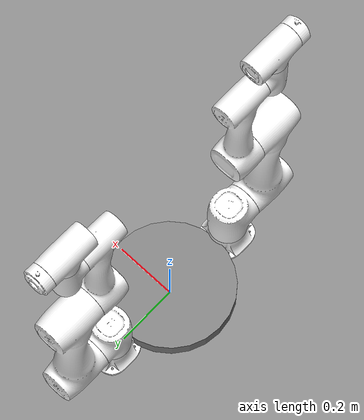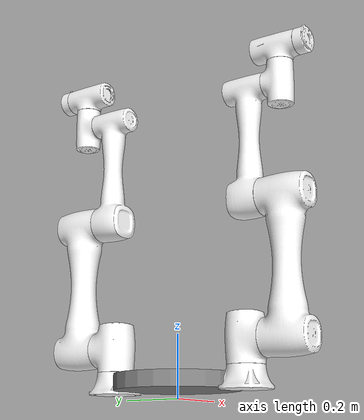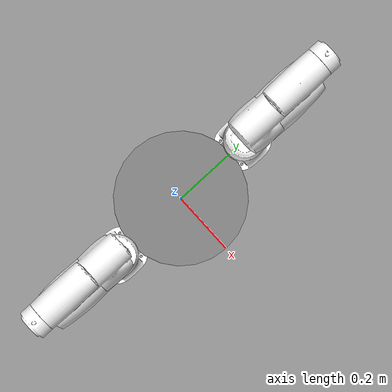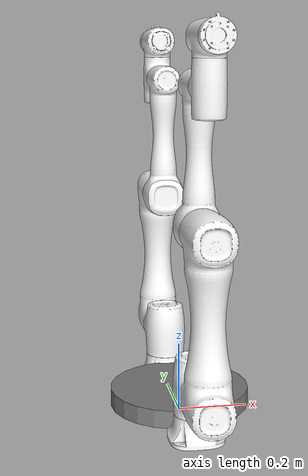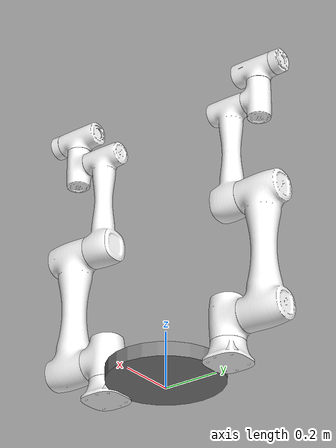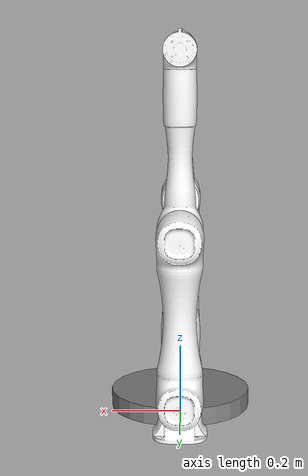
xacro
<?xml version="1.0"?>
<robot xmlns:xacro="http://www.ros.org/wiki/xacro" name="dual_cr5_robot">
    <xacro:arg name="initial_positions_file" default="initial_positions.yaml" />

    <!-- Import dual_cr5_robot urdf file -->
    <xacro:include filename="$(find cr5)/urdf/dual_arm.xacro" />

    <!-- Import control_xacro -->
    <xacro:include filename="dual_cr5_robot.ros2_control.xacro" />

    <xacro:dual_cr5_robot_ros2_control name="FakeSystem" initial_positions_file="$(arg initial_positions_file)"/>

</robot>

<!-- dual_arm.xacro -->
<robot xmlns:xacro="http://www.ros.org/wiki/xacro" name="dual_cr5_robot">

  <!-- 引入单臂CR5的宏定义 -->
  <xacro:include filename="$(find cr5)/urdf/cr5_arm.xacro" />

  <!-- ================= 共享底座定义 ================= -->
  <link name="world_base">
    <visual>
      <origin xyz="0 0 0.05" rpy="0 0 0" />
      <geometry>
        <!-- 这里用一个简单的圆柱体代替底座视觉，你可以换成自己的mesh -->
        <cylinder radius="0.2" length="0.05" />
      </geometry>
      <material name="gray">
        <color rgba="0.5 0.5 0.5 1" />
      </material>
    </visual>
  </link>

  <!-- ================= 实例化左臂 ================= -->
  <!-- 调用宏，传入前缀 "left_" -->
  <xacro:cr5 prefix="left_" />

  <!-- 将左臂的base_link固定到共享底座的左侧 -->
  <!-- 假设底座中心在0，左臂安装在y=0.3的位置 -->
  <joint name="left_cr5_to_base" type="fixed">
    <parent link="world_base" />
    <child link="left_base_link" />
    <!-- xyz: 左臂相对底座的平移， rpy: 旋转(左臂朝向右侧，绕Z轴旋转180度) -->
    <origin xyz="0 0.25 0.1" rpy="0 0 0" />
  </joint>

  <!-- ================= 实例化右臂 ================= -->
  <!-- 调用宏，传入前缀 "right_" -->
  <xacro:cr5 prefix="right_" />

  <!-- 将右臂的base_link固定到共享底座的右侧 -->
  <joint name="right_cr5_to_base" type="fixed">
    <parent link="world_base" />
    <child link="right_base_link" />
    <!-- xyz: 右臂相对底座的平移， rpy: 旋转(右臂朝向左侧，不旋转) -->
    <origin xyz="0 -0.25 0.1" rpy="0 0 3.141592653589793" />
  </joint>

</robot>

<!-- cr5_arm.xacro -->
<robot xmlns:xacro="http://www.ros.org/wiki/xacro">

  <xacro:macro name="cr5" params="prefix">

    <link name="${prefix}base_link">
      <inertial>
        <origin xyz="8.0966E-06 -0.0019103 -0.051005" rpy="0 0 0" />
        <mass value="0.90882" />
        <inertia ixx="0.0014545" ixy="4.2731E-08" ixz="1.8099E-07" iyy="0.001345" iyz="6.2437E-06" izz="0.002155" />
      </inertial>
      <visual>
        <origin xyz="0 0 0" rpy="0 0 0" />
        <geometry>
          <mesh filename="package://cr5/meshes/base_link.STL" />
        </geometry>
        <material name=""><color rgba="1 1 1 1" /></material>
      </visual>
      <collision>
        <origin xyz="0 0 0" rpy="0 0 0" />
        <geometry><mesh filename="package://cr5/meshes/base_link.STL" /></geometry>
      </collision>
    </link>

    <link name="${prefix}lk1">
      <inertial>
        <origin xyz="8.18394011160891E-07 0.00325758527261798 0.0593251706640469" rpy="0 0 0" />
        <mass value="1.6123089856095" />
        <inertia ixx="0.00291222507130299" ixy="7.43636397503612E-09" ixz="-2.16472187885338E-08" iyy="0.00281910519004488" iyz="-0.00044094180363419" izz="0.00328355836274413" />
      </inertial>
      <visual>
        <origin xyz="0 0 0" rpy="0 0 0" />
        <geometry><mesh filename="package://cr5/meshes/lk1.STL" /></geometry>
        <material name=""><color rgba="1 1 1 1" /></material>
      </visual>
      <collision>
        <origin xyz="0 0 0" rpy="0 0 0" />
        <geometry><mesh filename="package://cr5/meshes/lk1.STL" /></geometry>
      </collision>
    </link>
    <joint name="${prefix}jt1" type="revolute">
      <origin xyz="0 0 0" rpy="0 0 0" />
      <parent link="${prefix}base_link" /><child link="${prefix}lk1" />
      <axis xyz="0 0 1" /><limit lower="-3.14" upper="3.14" effort="100" velocity="1" />
    </joint>

    <link name="${prefix}lk2">
      <inertial>
        <origin xyz="-4.07551920223101E-09 -0.213509990415851 0.0712201630235778" rpy="0 0 0" />
        <mass value="5.52439538537763" />
        <inertia ixx="0.0275814564145088" ixy="1.72937368486661E-08" ixz="1.17682000397013E-09" iyy="0.00860329027107355" iyz="2.2954943577973E-10" izz="0.0283210374955827" />
      </inertial>
      <visual>
        <origin xyz="0 0 0" rpy="0 0 0" />
        <geometry><mesh filename="package://cr5/meshes/lk2.STL" /></geometry>
        <material name=""><color rgba="1 1 1 1" /></material>
      </visual>
      <collision>
        <origin xyz="0 0 0" rpy="0 0 0" />
        <geometry><mesh filename="package://cr5/meshes/lk2.STL" /></geometry>
      </collision>
    </link>
    <joint name="${prefix}jt2" type="revolute">
      <origin xyz="0 0.0713 0.067" rpy="-1.5708 0 0" />
      <parent link="${prefix}lk1" /><child link="${prefix}lk2" />
      <axis xyz="0 0 1" /><limit lower="-3.14" upper="3.14" effort="100" velocity="1" />
    </joint>

    <link name="${prefix}lk3">
      <inertial>
        <origin xyz="1.69942898221867E-07 0.152312204935856 0.048607146999369" rpy="0 0 0" />
        <mass value="2.85358342287792" />
        <inertia ixx="0.00929669536538658" ixy="-6.11041286567012E-10" ixz="7.41734661210139E-10" iyy="0.00326083420889769" iyz="0.000123628550085934" izz="0.00955520367164206" />
      </inertial>
      <visual>
        <origin xyz="0 0 0" rpy="0 0 0" />
        <geometry><mesh filename="package://cr5/meshes/lk3.STL" /></geometry>
        <material name=""><color rgba="1 1 1 1" /></material>
      </visual>
      <collision>
        <origin xyz="0 0 0" rpy="0 0 0" />
        <geometry><mesh filename="package://cr5/meshes/lk3.STL" /></geometry>
      </collision>
    </link>
    <joint name="${prefix}jt3" type="revolute">
      <origin xyz="0 -0.427 0" rpy="3.1416 0 0" />
      <parent link="${prefix}lk2" /><child link="${prefix}lk3" />
      <axis xyz="0 0 -1" /><limit lower="-2.79" upper="2.79" effort="100" velocity="1" />
    </joint>

    <link name="${prefix}lk4">
      <inertial>
        <origin xyz="-3.23872942785408E-07 -0.00207701711240893 0.0479452477759309" rpy="0 0 0" />
        <mass value="0.670578763328306" />
        <inertia ixx="0.000669393217067053" ixy="4.19746350806729E-10" ixz="-1.0733696757666E-08" iyy="0.000654243978246737" iyz="0.000110805321463686" izz="0.000653652683894412" />
      </inertial>
      <visual>
        <origin xyz="0 0 0" rpy="0 0 0" />
        <geometry><mesh filename="package://cr5/meshes/lk4.STL" /></geometry>
        <material name=""><color rgba="1 1 1 1" /></material>
      </visual>
      <collision>
        <origin xyz="0 0 0" rpy="0 0 0" />
        <geometry><mesh filename="package://cr5/meshes/lk4.STL" /></geometry>
      </collision>
    </link>
    <joint name="${prefix}jt4" type="revolute">
      <origin xyz="0 0.357 -0.0202" rpy="3.1416 0 0" />
      <parent link="${prefix}lk3" /><child link="${prefix}lk4" />
      <axis xyz="0 0 1" /><limit lower="-3.14" upper="3.14" effort="100" velocity="1" />
    </joint>

    <link name="${prefix}lk5">
      <inertial>
        <origin xyz="-3.4039705327987E-07 -0.00457777757255001 0.0482029409311968" rpy="0 0 0" />
        <mass value="0.726902811830809" />
        <inertia ixx="0.000730690017841734" ixy="-6.02619294288777E-09" ixz="6.85246571687323E-09" iyy="0.000711950290163978" iyz="-0.000119255565803413" izz="0.000713904252251437" />
      </inertial>
      <visual>
        <origin xyz="0 0 0" rpy="0 0 0" />
        <geometry><mesh filename="package://cr5/meshes/lk5.STL" /></geometry>
        <material name=""><color rgba="1 1 1 1" /></material>
      </visual>
      <collision>
        <origin xyz="0 0 0" rpy="0 0 0" />
        <geometry><mesh filename="package://cr5/meshes/lk5.STL" /></geometry>
      </collision>
    </link>
    <joint name="${prefix}jt5" type="revolute">
      <origin xyz="0 -0.0665 0.0495" rpy="1.5708 0 0" />
      <parent link="${prefix}lk4" /><child link="${prefix}lk5" />
      <axis xyz="0 0 1" /><limit lower="-3.14" upper="3.14" effort="100" velocity="1" />
    </joint>

    <link name="${prefix}lk6">
      <inertial>
        <origin xyz="5.07771932025395E-11 9.37736984086834E-05 0.0192145633229764" rpy="0 0 0" />
        <mass value="0.15788533522659" />
        <inertia ixx="7.80450541583694E-05" ixy="6.15824786503475E-15" ixz="6.2471243304184E-14" iyy="7.91678709433622E-05" iyz="-1.38218659646758E-07" izz="0.000129505866630553" />
      </inertial>
      <visual>
        <origin xyz="0 0 0" rpy="0 0 0" />
        <geometry><mesh filename="package://cr5/meshes/lk6.STL" /></geometry>
        <material name=""><color rgba="1 1 1 1" /></material>
      </visual>
      <collision>
        <origin xyz="0 0 0" rpy="0 0 0" />
        <geometry><mesh filename="package://cr5/meshes/lk6.STL" /></geometry>
      </collision>
    </link>
    <joint name="${prefix}jt6" type="revolute">
      <origin xyz="0 0.0665 0.0495" rpy="-1.5708 0 0" />
      <parent link="${prefix}lk5" /><child link="${prefix}lk6" />
      <axis xyz="0 0 1" /><limit lower="-3.14" upper="3.14" effort="100" velocity="1" />
    </joint>

  </xacro:macro>

</robot>
